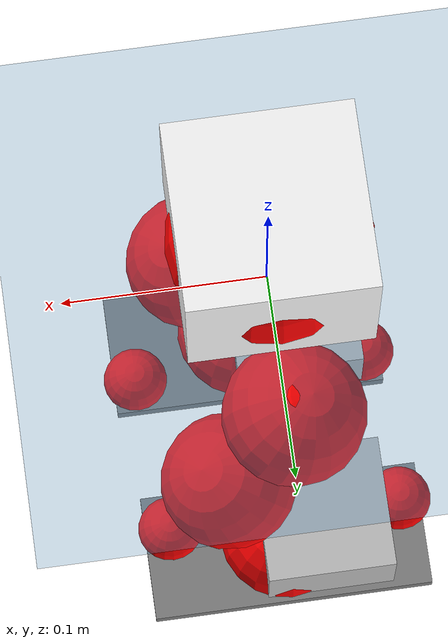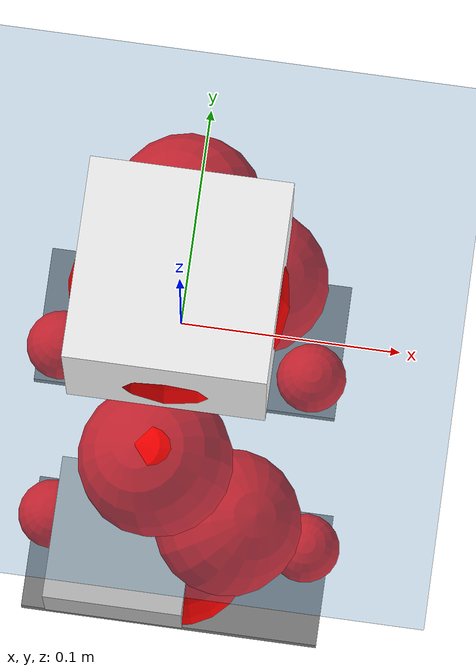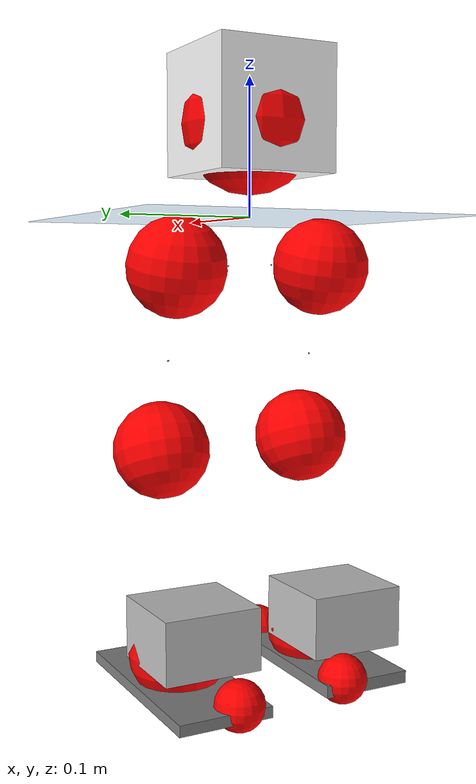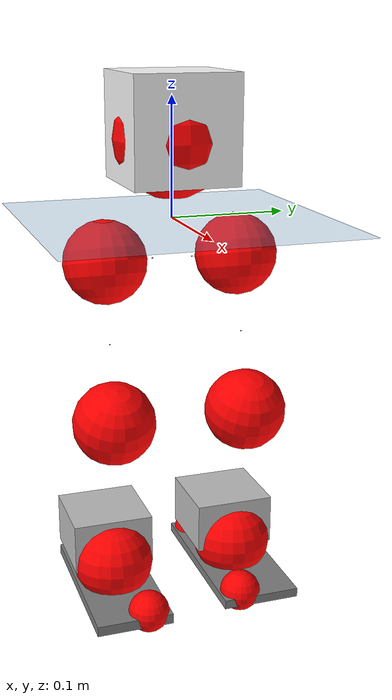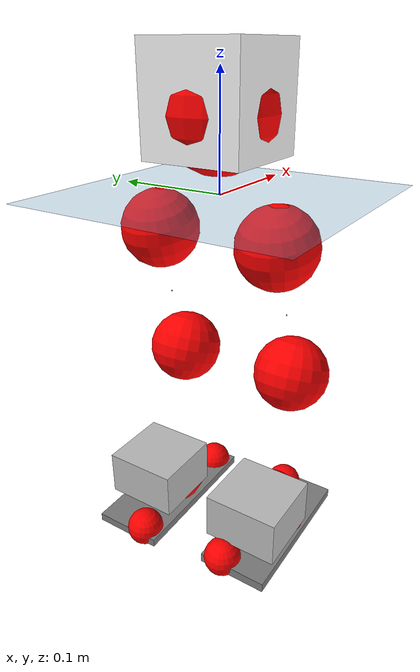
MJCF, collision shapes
<mujoco model="pi_12dof_release_v1">
  <compiler angle="radian" assetdir="assets" balanceinertia="true" inertiafromgeom="false"/>

  <option timestep="0.005" density="1.2" viscosity="2e-05"/>

  <size nkey="1"/>

  <visual>
    <quality shadowsize="8192"/>
    <map shadowclip="0.5"/>
  </visual>

  <default>
    <default class="/">
      <joint armature="0.01" damping="0.01" frictionloss="0.01"/>
      <geom contype="0" conaffinity="0" group="1" solref="-1000 -80"/>
      <site size="0.01 0.005 0.005" group="5"/>
      <general forcelimited="true" biastype="affine" gainprm="20" biasprm="0 -20 -0.5"/>
      <default class="foot">
        <geom size="0.0845 0.036 0.005" type="box" condim="6" group="4" priority="1" friction="0.9 0.2 0.2" solimp="0.015 1 0.005"/>
      </default>
      <default class="reward_collision_sphere">
        <geom group="5" rgba="1 0 0 1"/>
      </default>
    </default>
  </default>

  <asset>
    <texture type="skybox" colorspace="auto" name="//unnamed_texture_0" builtin="gradient" rgb1="0.95 0.95 0.95" rgb2="0.95 0.95 0.95" width="100" height="600"/>
    <texture type="2d" colorspace="auto" name="texplane" builtin="checker" rgb1="0.345 0.575 0.748" rgb2="0.345 0.575 0.748" markrgb="1 1 1" width="512" height="512"/>
    <material name="MatPlane" class="/" texture="texplane" texuniform="true" texrepeat="2 2" specular="0.9"/>
    <mesh name="baselink_1" class="/" file="baselink_1.STL"/>
    <mesh name="r_hip_pitch_link" class="/" file="r_hip_pitch_link.STL"/>
    <mesh name="r_hip_roll_link" class="/" file="r_hip_roll_link.STL"/>
    <mesh name="r_thigh_link" class="/" file="r_thigh_link.STL"/>
    <mesh name="r_calf_link" class="/" file="r_calf_link.STL"/>
    <mesh name="r_ankle_pitch_link" class="/" file="r_ankle_pitch_link.STL"/>
    <mesh name="r_ankle_roll_link" class="/" file="r_ankle_roll_link.STL"/>
    <mesh name="l_hip_pitch_link" class="/" file="l_hip_pitch_link.STL"/>
    <mesh name="l_hip_roll_link" class="/" file="l_hip_roll_link.STL"/>
    <mesh name="l_thigh_link" class="/" file="l_thigh_link.STL"/>
    <mesh name="l_calf_link" class="/" file="l_calf_link.STL"/>
    <mesh name="l_ankle_pitch_link" class="/" file="l_ankle_pitch_link.STL"/>
    <mesh name="l_ankle_roll_link" class="/" file="l_ankle_roll_link.STL"/>
  </asset>

  <worldbody>
    <geom name="floor" class="/" size="100 100 0.125" type="plane" group="0" material="MatPlane"/>
    <light name="toplight_shadow" class="/" pos="0 0 5" dir="0.0990148 0.0990148 -0.990148" type="directional" ambient="0.04 0.04 0.04" diffuse="0.55 0.55 0.55" specular="0.12 0.12 0.12"/>
    <light name="toplight_fill" class="/" pos="0 0 5" dir="0.0990148 0.0990148 -0.990148" type="directional" castshadow="false" ambient="0.04 0.04 0.04" diffuse="0.3 0.3 0.3" specular="0.08 0.08 0.08"/>
    <body name="trunk" pos="-0.000723017 0.000328201 -0.00258906" quat="1 0.000381715 -0.000154148 0.000223156">
      <inertial pos="-0.000560544 -0.00329353 0.0402387" quat="0.69455 0.0109882 0.00958371 0.719297" mass="1.56814" diaginertia="0.00838832 0.00244536 0.0036752"/>
      <joint name="//unnamed_joint_0" type="free"/>
      <geom name="//unnamed_geom_1" class="/" type="mesh" density="0" rgba="1 1 1 1" mesh="baselink_1"/>
      <geom name="//unnamed_geom_2" class="/" size="0.0448647 0.0448647 0.0448647" pos="0 0 0.0773503" type="box" rgba="1 1 1 1"/>
      <geom name="//unnamed_geom_3" class="reward_collision_sphere" size="0.0493512" pos="0 0 0.0676815"/>
      <site name="imu" class="/" pos="-0.0113713 0.00530553 0.0137886" size="0.00897294"/>
      <camera name="track" class="/" pos="0 -1.52983 0" quat="0.707107 0.707107 0 0" mode="trackcom"/>
      <camera name="ego_camera" class="/" pos="0.0720067 0 0.174038" quat="-0.5 -0.5 0.5 0.5"/>
      <body name="r_hip_pitch_link" pos="-0.00162475 -0.0168978 -0.0314193" quat="0.992216 0.000815352 -0.124527 -0.000562594">
        <inertial pos="0.00368917 -0.0450309 0.000225737" quat="-0.0164829 0.698736 -0.0259189 0.71472" mass="0.257823" diaginertia="8.54896e-05 2.54577e-05 7.01707e-05"/>
        <joint name="r_hip_pitch_joint" class="/" pos="0 0 0" axis="0.00294079 -0.999954 0.00917913" stiffness="0.00899385" range="-1.74431 1.19767" armature="0.00844901" damping="0.00165706" frictionloss="0.00881868"/>
        <geom name="//unnamed_geom_4" class="/" type="mesh" density="0" rgba="0.75294 0.75294 0.75294 1" mesh="r_hip_pitch_link"/>
        <geom name="//unnamed_geom_5" class="/" size="0.000448647 0.000448647 0.000448647" type="box" rgba="0.75294 0.75294 0.75294 1"/>
        <body name="r_hip_roll_link" pos="-0.00207382 -0.0412087 -0.00056437" quat="1 -2.59099e-05 0.000118897 -0.000230738">
          <inertial pos="0.000229598 -0.000498838 -0.0564766" quat="0.706795 -0.0792002 -0.0834173 0.698004" mass="0.287304" diaginertia="0.000262321 7.25574e-05 0.000109438"/>
          <joint name="r_hip_roll_joint" class="/" pos="0 0 0" axis="-0.999945 -0.00175316 -0.0103038" range="-0.174978 0.505105" armature="0.00846865" damping="0.0116828" frictionloss="0.0101841"/>
          <geom name="//unnamed_geom_6" class="/" type="mesh" density="0" rgba="0.75294 0.75294 0.75294 1" mesh="r_hip_roll_link"/>
          <geom name="//unnamed_geom_7" class="/" size="0.000448647 0.000448647 0.000448647" type="box" rgba="0.75294 0.75294 0.75294 1"/>
          <geom name="//unnamed_geom_8" class="reward_collision_sphere" size="0.0358918"/>
          <body name="r_thigh_link" pos="0.00273194 -0.00227018 -0.0691819" quat="0.999999 -0.000468248 -0.00119337 4.50281e-05">
            <inertial pos="0.000923819 0.00117662 -0.0454276" quat="0.73719 0.675681 -0.00210986 0.0012305" mass="0.0793794" diaginertia="9.93721e-05 2.46482e-05 4.8269e-05"/>
            <joint name="r_thigh_joint" class="/" pos="0 0 0" axis="0.0141501 0.00436316 -0.99989" stiffness="0.00441434" range="-0.293016 0.597148" armature="0.00894722" damping="0.0017112" frictionloss="0.00849656"/>
            <geom name="//unnamed_geom_9" class="/" type="mesh" density="0" rgba="0.75294 0.75294 0.75294 1" mesh="r_thigh_link"/>
            <geom name="//unnamed_geom_10" class="/" size="0.000448647 0.000448647 0.000448647" type="box" rgba="0.75294 0.75294 0.75294 1"/>
            <body name="r_calf_link" pos="-0.00250576 -0.00128508 -0.0670755" quat="0.947647 3.6053e-05 0.319321 -1.95169e-07">
              <inertial pos="0.00240094 -0.000734742 -0.0677086" quat="0.999981 -0.00397945 -0.00238923 0.00411312" mass="0.609034" diaginertia="0.00291167 0.000966737 0.000151768"/>
              <joint name="r_calf_joint" class="/" pos="0 0 0" axis="-0.00813513 -0.999963 0.00279628" stiffness="0.000468646" range="-1.63761 0.686732" armature="0.00786934" damping="0.0199881" frictionloss="0.00827209"/>
              <geom name="//unnamed_geom_11" class="/" type="mesh" density="0" rgba="0.75294 0.75294 0.75294 1" mesh="r_calf_link"/>
              <geom name="//unnamed_geom_12" class="/" size="0.000448647 0.000448647 0.000448647" type="box" rgba="0.75294 0.75294 0.75294 1"/>
              <geom name="//unnamed_geom_13" class="reward_collision_sphere" size="0.0358918"/>
              <body name="r_ankle_pitch_link" pos="-0.000479847 0.00233147 -0.137053" quat="0.980037 -2.80706e-05 -0.198813 -0.000185178">
                <inertial pos="0.00453623 0.00164596 0.00052385" quat="0.00551056 0.69771 0.000823675 0.716359" mass="0.11877" diaginertia="0.000240006 5.77335e-05 9.94354e-05"/>
                <joint name="r_ankle_pitch_joint" class="/" pos="0 0 0" axis="-0.00135349 -0.999996 0.00239649" range="-1.28565 0.481241" armature="0.00938839" damping="0" frictionloss="0.00899328"/>
                <geom name="//unnamed_geom_14" class="/" type="mesh" density="0" rgba="0.75294 0.75294 0.75294 1" mesh="r_ankle_pitch_link"/>
                <geom name="//unnamed_geom_15" class="/" size="0.0349945 0.0358918 0.0224323" type="box" rgba="0.75294 0.75294 0.75294 1"/>
                <body name="r_ankle_roll_link" pos="0.0765984 0.000296719 0.000992733" quat="1 0.000147722 -0.000130844 0.000141206">
                  <inertial pos="-0.0231307 -0.000244946 -0.0113715" quat="0.567654 0.424454 0.430933 0.558484" mass="0.380541" diaginertia="0.000897696 0.000261167 0.000239351"/>
                  <joint name="r_ankle_roll_joint" class="/" pos="0 0 0" axis="-0.999998 -0.00169869 0.00134783" range="-0.202112 0.169251" armature="0.00913586" damping="0" frictionloss="0.0102237"/>
                  <geom name="//unnamed_geom_16" class="/" type="mesh" density="0" rgba="0.75294 0.75294 0.75294 1" mesh="r_ankle_roll_link"/>
                  <geom name="//unnamed_geom_17" class="/" type="mesh" rgba="0.75294 0.75294 0.75294 1" mesh="r_ankle_roll_link"/>
                  <geom name="right_foot" class="foot" size="0.0757935 0.0336521 0.00449951" pos="-0.0489645 0 -0.0425427"/>
                  <geom name="//unnamed_geom_19" class="reward_collision_sphere" size="0.0358918" pos="-0.0480045 0 -0.0193376"/>
                  <geom name="//unnamed_geom_20" class="reward_collision_sphere" size="0.0179459" pos="0.0144013 0.0152983 -0.0386752"/>
                  <geom name="//unnamed_geom_21" class="reward_collision_sphere" size="0.0179459" pos="-0.115211 0.0152983 -0.0386752"/>
                  <site name="right_foot" class="foot" pos="-0.0489645 0 -0.0425427" size="0.00897294"/>
                </body>
              </body>
            </body>
          </body>
        </body>
      </body>
      <body name="l_hip_pitch_link" pos="-0.00253605 0.0188166 -0.0325534" quat="0.9922 -2.73061e-05 -0.124653 1.45236e-05">
        <inertial pos="0.0023571 0.0437577 1.72201e-05" quat="-0.0328896 0.71174 0.0339093 0.700852" mass="0.280946" diaginertia="0.000100611 2.73646e-05 7.93008e-05"/>
        <joint name="l_hip_pitch_joint" class="/" pos="0 0 0" axis="0.0065407 0.999917 0.0110759" range="-1.30248 1.72989" armature="0.0100973" damping="0.00326265" frictionloss="0.00942649"/>
        <geom name="//unnamed_geom_22" class="/" type="mesh" density="0" rgba="0.75294 0.75294 0.75294 1" mesh="l_hip_pitch_link"/>
        <geom name="//unnamed_geom_23" class="/" size="0.000448647 0.000448647 0.000448647" type="box" rgba="0.75294 0.75294 0.75294 1"/>
        <body name="l_hip_roll_link" pos="-0.00222282 0.0411044 -0.00028874" quat="1 -0.000234629 8.31608e-05 5.29918e-05">
          <inertial pos="-0.00161484 0.0026639 -0.0580014" quat="0.699275 -0.078121 -0.0785609 0.706215" mass="0.280207" diaginertia="0.000270823 7.05306e-05 0.000108265"/>
          <joint name="l_hip_roll_joint" class="/" pos="0 0 0" axis="-0.999916 0.00305375 -0.0125596" range="-0.453827 0.163044" armature="0.00853927" damping="0" frictionloss="0.00773721"/>
          <geom name="//unnamed_geom_24" class="/" type="mesh" density="0" rgba="0.75294 0.75294 0.75294 1" mesh="l_hip_roll_link"/>
          <geom name="//unnamed_geom_25" class="/" size="0.000448647 0.000448647 0.000448647" type="box" rgba="0.75294 0.75294 0.75294 1"/>
          <geom name="//unnamed_geom_26" class="reward_collision_sphere" size="0.0358918"/>
          <body name="l_thigh_link" pos="-0.002452 0.000718339 -0.0680192" quat="1 0.000217547 -0.000181866 0.000173512">
            <inertial pos="0.00051147 -0.00161332 -0.0456476" quat="0.681838 0.73149 -0.000126686 -0.00433227" mass="0.0817505" diaginertia="0.000101709 2.45353e-05 4.76812e-05"/>
            <joint name="l_thigh_joint" class="/" pos="0 0 0" axis="-0.000536517 0.00267263 -0.999996" stiffness="0.00212062" range="-0.646334 0.342148" armature="0.00970695" damping="0" frictionloss="0.010026"/>
            <geom name="//unnamed_geom_27" class="/" type="mesh" density="0" rgba="0.75294 0.75294 0.75294 1" mesh="l_thigh_link"/>
            <geom name="//unnamed_geom_28" class="/" size="0.000448647 0.000448647 0.000448647" type="box" rgba="0.75294 0.75294 0.75294 1"/>
            <body name="l_calf_link" pos="0.000836224 -0.00218683 -0.0694852" quat="0.948089 -0.000169212 0.318003 0.000355993">
              <inertial pos="-0.00229065 0.00171097 -0.064955" quat="0.999977 0.00353141 -0.00151587 0.00567398" mass="0.576146" diaginertia="0.00282238 0.000896662 0.000140083"/>
              <joint name="l_calf_joint" class="/" pos="0 0 0" axis="0.00297956 0.999994 -0.00183538" range="-0.63951 1.61356" armature="0.00777141" damping="0.00722185" frictionloss="0.00774381"/>
              <geom name="//unnamed_geom_29" class="/" type="mesh" density="0" rgba="0.75294 0.75294 0.75294 1" mesh="l_calf_link"/>
              <geom name="//unnamed_geom_30" class="/" size="0.000448647 0.000448647 0.000448647" type="box" rgba="0.75294 0.75294 0.75294 1"/>
              <geom name="//unnamed_geom_31" class="reward_collision_sphere" size="0.0358918"/>
              <body name="l_ankle_pitch_link" pos="-0.000507808 -0.000304958 -0.133056" quat="0.980072 -6.88467e-05 -0.198643 0.000196456">
                <inertial pos="0.00742444 -0.000129361 -0.00096493" quat="-0.00222175 0.707128 0.0022412 0.707078" mass="0.12006" diaginertia="0.00023592 5.67406e-05 9.76112e-05"/>
                <joint name="l_ankle_pitch_joint" class="/" pos="0 0 0" axis="0.00537469 0.99991 -0.0122817" range="-0.511334 1.31091" armature="0.00901974" damping="0" frictionloss="0.00982373"/>
                <geom name="//unnamed_geom_32" class="/" type="mesh" density="0" rgba="0.75294 0.75294 0.75294 1" mesh="l_ankle_pitch_link"/>
                <geom name="//unnamed_geom_33" class="/" size="0.0349945 0.0358918 0.0224323" type="box" rgba="0.75294 0.75294 0.75294 1"/>
                <body name="l_ankle_roll_link" pos="0.0692255 0.00172687 -0.000520325" quat="1 -0.000303919 -0.000714367 -7.64822e-05">
                  <inertial pos="-0.0246278 -0.000414914 -0.0138832" quat="0.563419 0.418411 0.439754 0.560454" mass="0.367529" diaginertia="0.000893833 0.000277555 0.000238143"/>
                  <joint name="l_ankle_roll_joint" class="/" pos="0 0 0" axis="-0.999995 -0.00318809 -0.000647761" range="-0.146328 0.155147" armature="0.00894189" damping="0.00524179" frictionloss="0.00786967"/>
                  <geom name="//unnamed_geom_34" class="/" type="mesh" density="0" rgba="0.75294 0.75294 0.75294 1" mesh="l_ankle_roll_link"/>
                  <geom name="//unnamed_geom_35" class="/" type="mesh" rgba="0.75294 0.75294 0.75294 1" mesh="l_ankle_roll_link"/>
                  <geom name="left_foot" class="foot" size="0.077889 0.0346184 0.00401901" pos="-0.0489645 0 -0.0425427"/>
                  <geom name="//unnamed_geom_37" class="reward_collision_sphere" size="0.0358918" pos="-0.0480045 0 -0.0193376"/>
                  <geom name="//unnamed_geom_38" class="reward_collision_sphere" size="0.0179459" pos="0.0144013 -0.0152983 -0.0386752"/>
                  <geom name="//unnamed_geom_39" class="reward_collision_sphere" size="0.0179459" pos="-0.115211 -0.0152983 -0.0386752"/>
                  <site name="left_foot" class="foot" pos="-0.0489645 0 -0.0425427" size="0.00897294"/>
                </body>
              </body>
            </body>
          </body>
        </body>
      </body>
    </body>
  </worldbody>

  <contact>
    <pair class="/" geom1="floor" geom2="right_foot" name="//unnamed_contact_1"/>
    <pair class="/" geom1="floor" geom2="left_foot" name="//unnamed_contact_0"/>
  </contact>

  <actuator>
    <general name="r_hip_pitch_joint" class="/" joint="r_hip_pitch_joint" forcerange="-19.1964 19.1964" gainprm="18.3885" biasprm="0 -18.3885 -0.478803"/>
    <general name="r_hip_roll_joint" class="/" joint="r_hip_roll_joint" forcerange="-16.882 16.882" gainprm="18.3885" biasprm="0 -18.3885 -0.478803"/>
    <general name="r_thigh_joint" class="/" joint="r_thigh_joint" forcerange="-20.8172 20.8172" gainprm="18.3885" biasprm="0 -18.3885 -0.478803"/>
    <general name="r_calf_joint" class="/" joint="r_calf_joint" forcerange="-18.45 18.45" gainprm="18.3885" biasprm="0 -18.3885 -0.478803"/>
    <general name="r_ankle_pitch_joint" class="/" joint="r_ankle_pitch_joint" forcerange="-16.8469 16.8469" gainprm="18.3885" biasprm="0 -18.3885 -0.478803"/>
    <general name="r_ankle_roll_joint" class="/" joint="r_ankle_roll_joint" forcerange="-19.0282 19.0282" gainprm="18.3885" biasprm="0 -18.3885 -0.478803"/>
    <general name="l_hip_pitch_joint" class="/" joint="l_hip_pitch_joint" forcerange="-19.5515 19.5515" gainprm="18.3885" biasprm="0 -18.3885 -0.478803"/>
    <general name="l_hip_roll_joint" class="/" joint="l_hip_roll_joint" forcerange="-17.4368 17.4368" gainprm="18.3885" biasprm="0 -18.3885 -0.478803"/>
    <general name="l_thigh_joint" class="/" joint="l_thigh_joint" forcerange="-19.2222 19.2222" gainprm="18.3885" biasprm="0 -18.3885 -0.478803"/>
    <general name="l_calf_joint" class="/" joint="l_calf_joint" forcerange="-17.2196 17.2196" gainprm="18.3885" biasprm="0 -18.3885 -0.478803"/>
    <general name="l_ankle_pitch_joint" class="/" joint="l_ankle_pitch_joint" forcerange="-19.7273 19.7273" gainprm="18.3885" biasprm="0 -18.3885 -0.478803"/>
    <general name="l_ankle_roll_joint" class="/" joint="l_ankle_roll_joint" forcerange="-16.8792 16.8792" gainprm="18.3885" biasprm="0 -18.3885 -0.478803"/>
  </actuator>

  <sensor>
    <gyro site="imu" name="imu_angular_velocity"/>
    <velocimeter site="imu" name="imu_linear_velocity"/>
    <framelinvel objtype="site" objname="left_foot" name="left_foot_global_linear_velocity"/>
    <framelinvel objtype="site" objname="right_foot" name="right_foot_global_linear_velocity"/>
  </sensor>

  <keyframe>
    <key name="home" qpos="0 0 0.291 1 0 0 0 0.4 0 0 -0.8 0.4 0 -0.4 0 0 0.8 -0.4 0"/>
  </keyframe>
</mujoco>
